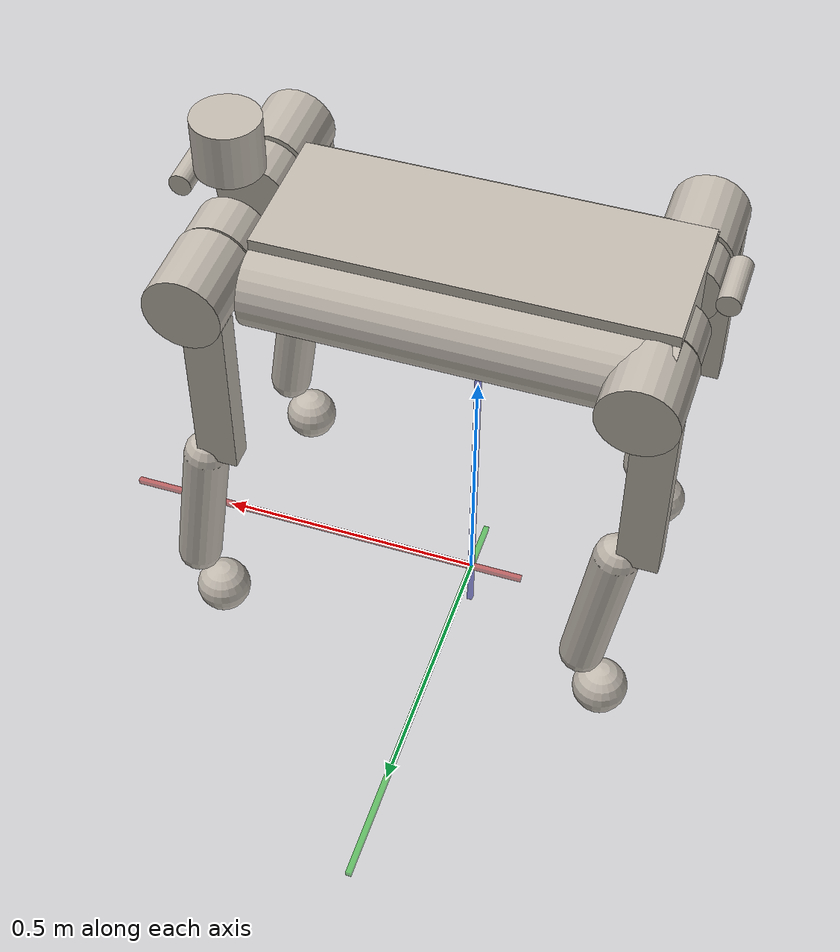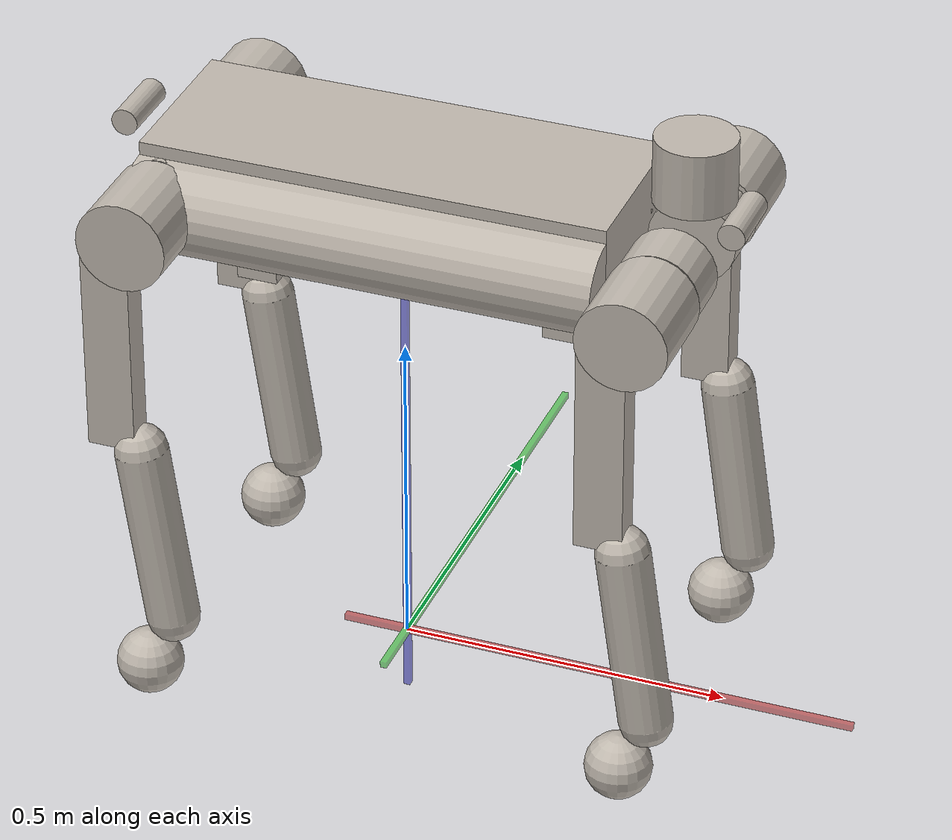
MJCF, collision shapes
<mujoco model="A01B_URDF">
  <compiler angle="radian" assetdir="meshes" discardvisual="false" autolimits="true" eulerseq="zyx"/>
  <option timestep="0.002"  tolerance="0.0000000001" impratio="200" noslip_iterations="100000"/>

  <visual >
    <rgba contactpoint="0.1 0.8 0.2 1" contactforce="0.7 0.5 0.4 1"/>
    <scale forcewidth="0.04" contactwidth="0.15" contactheight="0.01"/>
  </visual>

  <default>
    <default class="quadruped">
      <general dyntype="none" biastype="affine"/>
      <geom friction="0.8" margin="0.001" material="robot_color"/>
      <default class="collision">
        <geom group="4" contype="1" conaffinity="1" mass="0"/>
        <default class="collision_abad">
          <geom type="cylinder" size="0.065 0.04" mass="0"  quat="1 1 0 0"/>
        </default>
        <default class="collision_thigh_1">
          <geom type="cylinder" size="0.068 0.068" mass="0.0" quat="1 1 0 0"/>
        </default>
        <default class="collision_thigh_2">
          <geom type="box" size="0.036 0.022 0.16" mass="0.0"/>
        </default>
        <default class="collision_calf">
          <geom type="capsule" size="0.04" fromto="0 0 -0.0 0.04 0 -0.28" mass="0.0"/>
        </default>
        <default class="foot">
          <geom type="sphere" size="0.05" pos="0 0 -0.37" mass="0.05" priority="1" solimp="0.015 1 0.031"
              condim="3" friction="1.6 0.02 0.01"/>
        </default>
        <default class="foot_site">
          <site size="0.05" pos="0 0 -0.4" group="3"/>
        </default>
        <!-- 雷达 -->
        <default class="radar">
          <geom type="cylinder" size="0.06 0.05" pos="0 0 0.39" mass="2.3" priority="1" solimp="0.015 1 0.031"
              condim="3" friction="1.0 0.02 0.01"/>
        </default>
        <default class="face">
          <geom type="cylinder" size="0.02 0.05"  mass="0.0"/>
        </default>
      <!-- 机身底座支架碰撞点 -->
      <default class="base_bracket">
          <geom type="box" size="0.03 0.015 0.01"  mass="0.001" priority="1" solimp="0.015 1 0.031"
              condim="3" friction="1.0 0.02 0.01" group="5"/>
        </default>
      </default>
      <default class="visual">
        <geom type="mesh" contype="0" conaffinity="0" group="2"/>
      </default>`
      <default class="joint">
        <joint damping="1.6" frictionloss="1"/>
      </default>
    </default>
  </default>
  <asset>
    <texture type="2d" name="trunk" file="texture2.png"/>
    <material name="robot_color" texture="trunk" specular="1" shininess="0.25"/>

    <texture type="2d" name="Metal009_color"      file="../../../../textures/Metal009_2K-PNG/Metal009_2K-PNG_Color.png"/>
    <texture type="2d" name="Metal009_roughness"  file="../../../../textures/Metal009_2K-PNG/Metal009_2K-PNG_Roughness.png"/>
    <texture type="2d" name="Metal009_metalic"  file="../../../../textures/Metal009_2K-PNG/Metal009_2K-PNG_Metalness.png"/>
    <texture type="2d" name="Metal009_normal"     file="../../../../textures/Metal009_2K-PNG/Metal009_2K-PNG_NormalDX.png"/>

    <material name="pbr_metal_gray" metallic ="0.0" roughness="1.0" rgba="1 0 0 1.0">
      <layer role="rgb"        texture="Metal009_color"/>
      <layer role="normal"     texture="Metal009_normal"/>
      <layer role="roughness"  texture="Metal009_roughness"/>
      <layer role="metallic"   texture="Metal009_metalic"/>
    </material>

    <texture type="2d" name="Plastic006_color"      file="../../../../textures/Plastic006_2K-PNG/Plastic006_2K-PNG_Color.png"/>
    <texture type="2d" name="Plastic006_roughness"  file="../../../../textures/Plastic006_2K-PNG/Plastic006_2K-PNG_Roughness.png"/>
    <texture type="2d" name="Plastic006_normal"     file="../../../../textures/Plastic006_2K-PNG/Plastic006_2K-PNG_NormalDX.png"/>

    <material name="pbr_plastic_black" metallic ="0.05" roughness="1.0" rgba="1 0 0 1.0">
      <layer role="rgb"        texture="Plastic006_color"/>
      <layer role="normal"     texture="Plastic006_normal"/>
      <layer role="roughness"  texture="Plastic006_roughness"/>
    </material>

    <texture type="2d" name="Metal044A_color"      file="../../../../textures/Metal044A_2K-PNG/Metal044A_2K-PNG_Color.png"/>
    <texture type="2d" name="Metal044A_roughness"  file="../../../../textures/Metal044A_2K-PNG/Metal044A_2K-PNG_Roughness.png"/>
    <texture type="2d" name="Metal044A_metalic"  file="../../../../textures/Metal044A_2K-PNG/Metal044A_2K-PNG_Metalness.png"/>
    <texture type="2d" name="Metal044A_normal"     file="../../../../textures/Metal044A_2K-PNG/Metal044A_2K-PNG_NormalDX.png"/>

    <material name="pbr_metal_silver_smooth" metallic ="0.0" roughness="1.0" rgba="1 0 0 1.0">
      <layer role="rgb"        texture="Metal044A_color"/>
      <layer role="normal"     texture="Metal044A_normal"/>
      <layer role="roughness"  texture="Metal044A_roughness"/>
      <layer role="metallic"   texture="Metal044A_metalic"/>
    </material>

    <texture type="2d" name="Metal044B_color"      file="../../../../textures/Metal044B_2K-PNG/Metal044B_2K-PNG_Color.png"/>
    <texture type="2d" name="Metal044B_roughness"  file="../../../../textures/Metal044B_2K-PNG/Metal044B_2K-PNG_Roughness.png"/>
    <texture type="2d" name="Metal044B_metalic"  file="../../../../textures/Metal044B_2K-PNG/Metal044B_2K-PNG_Metalness.png"/>
    <texture type="2d" name="Metal044B_normal"     file="../../../../textures/Metal044B_2K-PNG/Metal044B_2K-PNG_NormalDX.png"/>

    <material name="pbr_metal_silver_rough" metallic ="0.0" roughness="1.0" rgba="1 0 0 1.0">
      <layer role="rgb"        texture="Metal044B_color"/>
      <layer role="normal"     texture="Metal044B_normal"/>
      <layer role="roughness"  texture="Metal044B_roughness"/>
      <layer role="metallic"   texture="Metal044B_metalic"/>
    </material>

    <mesh name="base_link" file="base_link.STL"/>
    <mesh name="fl_abad" file="fl_abad.STL"/>
    <mesh name="fl_thigh" file="fl_thigh.STL"/>
    <mesh name="fl_calf" file="fl_calf.STL"/>
    <mesh name="fr_abad" file="fr_abad.STL"/>
    <mesh name="fr_thigh" file="fr_thigh.STL"/>
    <mesh name="fr_calf" file="fr_calf.STL"/>
    <mesh name="hl_abad" file="hl_abad.STL"/>
    <mesh name="hl_thigh" file="hl_thigh.STL"/>
    <mesh name="hl_calf" file="hl_calf.STL"/>
    <mesh name="hr_abad" file="hr_abad.STL"/>
    <mesh name="hr_thigh" file="hr_thigh.STL"/>
    <mesh name="hr_calf" file="hr_calf.STL"/>
  </asset>

  <worldbody>

    <body name="command_indicator_mocap" pos="0 0 0" mocap="true">
      <geom conaffinity="0" contype="0" pos="0.3 0 0" rgba="0.7 0 0 0.5" size="0.4 0.005 0.005" type="box" group="1"></geom>
      <geom conaffinity="0" contype="0" pos="0 0.3 0" rgba="0 0.7 0 0.5" size="0.005 0.4 0.005" type="box" group="1"></geom>
      <geom conaffinity="0" contype="0" pos="0 0 0.3" rgba="0 0 0.7 0.5" size="0.005 0.005 0.4" type="box" group="1"></geom>
    </body>

    <body name="trunk_link" pos="0 0 0.8">
      <geom type="mesh" rgba="1 1 1 1" pos="0.0608046 -0.0181483 -0.0448853" mesh="base_link" class="visual" material="pbr_metal_silver_rough"/>
      <inertial mass="30.0746" pos="0.007942 0 0.007308" fullinertia="0.3194 1.180 1.35 0 0 0"/>

      <geom class="collision" type="box" pos="0 0 -0.04" size="0.35 0.13 0.08" contype="0" conaffinity="1"/>
      <geom class="collision" type="cylinder" size="0.07 0.35" pos="0 -0.13 -0.05" quat="1 0 1 0" contype="0" conaffinity="1"/>
      <geom class="collision" type="cylinder" size="0.07 0.35" pos="0 0.13 -0.05" quat="1 0 1 0" contype="0" conaffinity="1"/>
      <!-- 机身底座支架的碰撞点 -->
      <geom name="fr_base_bracket" class="base_bracket"  pos="0.285 -0.108 -0.145"   contype="1" conaffinity="1"/>
      <geom name="fl_base_bracket" class="base_bracket"  pos="0.285 0.072 -0.145"   contype="1" conaffinity="1"/>
      <geom name="hr_base_bracket" class="base_bracket"  pos="-0.177 -0.108 -0.145"   contype="1" conaffinity="1"/>
      <geom name="hl_base_bracket" class="base_bracket"  pos="-0.177 0.072 -0.145"   contype="1" conaffinity="1"/>
      <geom name="top_radar" class="radar"  pos="0.44 -0.02 0.1"   contype="1" conaffinity="1"/>
      <geom name="front_face" class="face"  pos="0.51 -0.02 0.03" quat="0 0 1 1"  contype="1" conaffinity="1"/>
      <geom name="back_face" class="face"  pos="-0.4 -0.02 0.03" quat="0 0 1 1"  contype="1" conaffinity="1"/>
      <site name="imu" size="0.01" pos="0 0 0"/>

      <freejoint name="trunk"/>
      <body name="fr_abad" pos="0.42386 -0.11844 -0.044478">
        <inertial pos="-0.014896 0.015941 0.000002330446" quat="0.456334 0.441042 0.546683 0.54624" mass="2.4" diaginertia="0.00830465 0.00689115 0.0036792"/>
        <joint name="fr_joint0" pos="0 0 0" axis="1 0 0" range="-0.7854 0.7854" class="joint"/>
        <geom type="mesh" rgba="1 1 1 1" mesh="fr_abad" class="visual" material="pbr_metal_silver_rough"/>
        <geom  class="collision_abad" pos="0 0.02 0" contype="0" conaffinity="0"/>
        <body name="fr_thigh" pos="0 -0.13425 0">
          <inertial pos="-0.00344 0.057962 -0.023227" quat="0.987524 -0.130746 0.029794 -0.0825434" mass="4.832" diaginertia="0.0345519 0.0324169 0.00515115"/>
          <joint name="fr_joint1" pos="0 0 0" axis="0 -1 0" range="-3.1765 0" class="joint"/>
          <geom type="mesh" rgba="1 1 1 1" mesh="fr_thigh" class="visual" material="pbr_metal_silver_rough"/>
          <geom class="collision_thigh_1" pos="0 0.04 0" contype="0" conaffinity="0"/>
          <geom class="collision_thigh_2" pos="-0.03 0.0 -0.18" contype="0" conaffinity="0"/>
          <body name="fr_calf" pos="0 0 -0.35">
            <inertial pos="0.0167506 0.000104828 -0.179424" quat="0.721314 -0.0175889 -0.0176363 0.69216" mass="0.61" diaginertia="0.0158521 0.0155591 0.000377821"/>
            <joint name="fr_joint2" pos="0 0 0" axis="0 -1 0" range="0.5208 2.5173" class="joint"/>
            <geom type="mesh" rgba="1 1 1 1" mesh="fr_calf" class="visual" material="pbr_plastic_black"/>
            <geom  class="collision_calf" contype="1" conaffinity="0"/>
            <body name="fr_foot">
              <geom  class="foot" contype="1" conaffinity="1" name="fr"/>
              <site name="fr_site" class="foot_site" />
            </body>
          </body>
        </body>
      </body>
      <body name="fl_abad" pos="0.42386 0.081557 -0.044479">
        <inertial pos="-0.014896 -0.015941 0.000233" quat="0.546522 0.546463 0.44111 0.456195" mass="2.4" diaginertia="0.00666332 0.00556161 0.00306241"/>
        <joint name="fl_joint0" pos="0 0 0" axis="1 0 0" range="-0.7854 0.7854" class="joint"/>
        <geom type="mesh" rgba="1 1 1 1" mesh="fl_abad" class="visual" material="pbr_metal_silver_rough"/>
        <geom  class="collision_abad" pos="0 -0.02 0" contype="0" conaffinity="0"/>
        <body name="fl_thigh" pos="0 0.1343 0">
          <inertial pos="-0.00344 -0.057962 -0.023227" quat="0.987524 0.130746 0.029794 0.0825434" mass="4.832" diaginertia="0.0345519 0.0324169 0.00515115"/>
          <joint name="fl_joint1" pos="0 0 0" axis="0 -1 0" range="-3.1765 0" class="joint"/>
          <geom type="mesh" rgba="1 1 1 1" mesh="fl_thigh" class="visual" material="pbr_metal_silver_rough"/>
          <geom class="collision_thigh_1" pos="0 -0.04 0" contype="0" conaffinity="0"/>
          <geom class="collision_thigh_2" pos="-0.03 0.0 -0.18" contype="0" conaffinity="0"/>
          <body name="fl_calf" pos="0 0 -0.35">
            <inertial pos="0.01656 -0.000105 -0.179108" quat="0.706202 -0.0170205 -0.0176403 0.707586" mass="0.61" diaginertia="0.0158062 0.0155149 0.000377068"/>
            <joint name="fl_joint2" pos="0 0 0" axis="0 -1 0" range="0.5208 2.5173" class="joint"/>
            <geom type="mesh" rgba="1 1 1 1" mesh="fl_calf" class="visual" material="pbr_plastic_black"/>
            <geom class="collision_calf" contype="1" conaffinity="0"/>
            <body name="fl_foot">
              <geom class="foot" contype="1" conaffinity="1" name="fl"/>
              <site name="fl_site" class="foot_site"/>
            </body>
          </body>
        </body>
      </body>
      <body name="hr_abad" pos="-0.31564 -0.11844 -0.044478">
        <inertial pos="0.014896 0.015941 0.000233" quat="0.546463 0.546522 0.456195 0.44111" mass="2.4" diaginertia="0.00666332 0.00556161 0.00306241"/>
        <joint name="hr_joint0" pos="0 0 0" axis="1 0 0" range="-0.7854 0.7854" class="joint"/>
        <geom type="mesh" rgba="1 1 1 1" mesh="hr_abad" class="visual" material="pbr_metal_silver_rough"/>
        <geom class="collision_abad" pos="0 0.02 0" contype="0" conaffinity="0"/>
        <body name="hr_thigh" pos="0 -0.1343 0">
          <inertial pos="0.00344 0.057962 -0.023227" quat="0.987524 -0.130746 -0.029794 0.0825434" mass="4.832" diaginertia="0.0345519 0.0324169 0.00515115"/>
          <joint name="hr_joint1" pos="0 0 0" axis="0 -1 0" range="-3.1765 0" class="joint"/>
          <geom type="mesh" rgba="1 1 1 1" mesh="hr_thigh" class="visual" material="pbr_metal_silver_rough"/>
          <geom class="collision_thigh_1" pos="0 0.04 0" contype="0" conaffinity="0"/>
          <geom class="collision_thigh_2" pos="-0.03 0.0 -0.18" contype="0" conaffinity="0"/>
          <body name="hr_calf" pos="0.0067191 0 -0.34994">
            <inertial pos="0.01656 0.000105 -0.179108" quat="0.707586 -0.0176403 -0.0170205 0.706202" mass="0.61" diaginertia="0.0158062 0.0155149 0.000377068"/>
            <joint name="hr_joint2" pos="0 0 0" axis="0 -1 0" range="0.5208 2.5173" class="joint"/>
            <geom type="mesh" rgba="1 1 1 1" mesh="hr_calf" class="visual" material="pbr_plastic_black"/>
            <geom class="collision_calf" contype="1" conaffinity="0"/>
            <body name="hr_foot">
              <geom class="foot" contype="1" conaffinity="1" name="hr"/>
              <site name="hr_site" class="foot_site"/>
            </body>
          </body>
        </body>
      </body>
      <body name="hl_abad" pos="-0.31564 0.081559 -0.044478">
        <inertial pos="0.014896 -0.015941 0.000233" quat="0.44111 0.456195 0.546522 0.546463" mass="2.4" diaginertia="0.00666332 0.00556161 0.00306241"/>
        <joint name="hl_joint0" pos="0 0 0" axis="1 0 0" range="-0.7854 0.7854" class="joint"/>
        <geom type="mesh" rgba="1 1 1 1" mesh="hl_abad" class="visual" material="pbr_metal_silver_rough"/>
        <geom class="collision_abad" pos="0 -0.02 0" contype="0" conaffinity="0"/>
        <body name="hl_thigh" pos="0 0.13425 0">
          <inertial pos="0.00344 -0.057962 -0.023227" quat="0.987524 0.130746 -0.029794 -0.0825434" mass="4.832" diaginertia="0.0345519 0.0324169 0.00515115"/>
          <joint name="hl_joint1" pos="0 0 0" axis="0 -1 0" range="-3.1765 0" class="joint"/>
          <geom type="mesh" rgba="1 1 1 1" mesh="hl_thigh" class="visual" material="pbr_metal_silver_rough"/>
          <geom class="collision_thigh_1" pos="0 -0.04 0" contype="0" conaffinity="0"/>
          <geom class="collision_thigh_2" pos="-0.03 0.0 -0.18" contype="0" conaffinity="0"/>
          <body name="hl_calf" pos="0.0067191 0 -0.34994">
            <inertial pos="0.01656 -0.000105 -0.179108" quat="0.709257 -0.0169468 -0.0177109 0.704523" mass="0.61" diaginertia="0.0158062 0.0155149 0.000377068"/>
            <joint name="hl_joint2" pos="0 0 0" axis="0 -1 0" range="0.5208 2.5173" class="joint"/>
            <geom type="mesh" rgba="1 1 1 1" mesh="hl_calf" class="visual" material="pbr_plastic_black"/>
            <geom class="collision_calf" contype="1" conaffinity="0"/>
            <body name="hl_foot">
              <geom class="foot" contype="1" conaffinity="1" name="hl"/>
              <site name="hl_site" class="foot_site"/>
            </body>
          </body>
        </body>
      </body>

    </body>
  </worldbody>

  <actuator>
      <!-- 前左腿 -->
      <position name="fl_abad_actuator" joint="fl_joint0" kp="200" kv="20"
                ctrllimited="true" ctrlrange="-0.7854 0.7854"
                forcelimited="true" forcerange="-200 200"/>
      <position name="fl_thigh_actuator" joint="fl_joint1" kp="400" kv="40"
                ctrllimited="true" ctrlrange="-3.1765 0"
                forcelimited="true" forcerange="-200 200"/>
      <position name="fl_calf_actuator" joint="fl_joint2" kp="300" kv="30"
                ctrllimited="true" ctrlrange="0.5208 2.5173"
                forcelimited="true" forcerange="-200 200"/>

      <!-- 前右腿 -->
      <position name="fr_abad_actuator" joint="fr_joint0" kp="200" kv="20"
                ctrllimited="true" ctrlrange="-0.7854 0.7854"
                forcelimited="true" forcerange="-200 200"/>
      <position name="fr_thigh_actuator" joint="fr_joint1" kp="400" kv="40"
                ctrllimited="true" ctrlrange="-3.1765 0"
                forcelimited="true" forcerange="-200 200"/>
      <position name="fr_calf_actuator" joint="fr_joint2" kp="300" kv="30"
                ctrllimited="true" ctrlrange="0.5208 2.5173"
                forcelimited="true" forcerange="-200 200"/>

      <!-- 后左腿 -->
      <position name="hl_abad_actuator" joint="hl_joint0" kp="200" kv="20"
                ctrllimited="true" ctrlrange="-0.7854 0.7854"
                forcelimited="true" forcerange="-200 200"/>
      <position name="hl_thigh_actuator" joint="hl_joint1" kp="400" kv="40"
                ctrllimited="true" ctrlrange="-3.1765 0"
                forcelimited="true" forcerange="-200 200"/>
      <position name="hl_calf_actuator" joint="hl_joint2" kp="300" kv="30"
                ctrllimited="true" ctrlrange="0.5208 2.5173"
                forcelimited="true" forcerange="-200 200"/>

      <!-- 后右腿 -->
      <position name="hr_abad_actuator" joint="hr_joint0" kp="200" kv="20"
                ctrllimited="true" ctrlrange="-0.7854 0.7854"
                forcelimited="true" forcerange="-200 200"/>
      <position name="hr_thigh_actuator" joint="hr_joint1" kp="400" kv="40"
                ctrllimited="true" ctrlrange="-3.1765 0"
                forcelimited="true" forcerange="-200 200"/>
      <position name="hr_calf_actuator" joint="hr_joint2" kp="300" kv="30"
                ctrllimited="true" ctrlrange="0.5208 2.5173"
                forcelimited="true" forcerange="-200 200"/>
  </actuator>

<sensor>
<framequat name="imu_quat" objtype="site" objname="imu"/>
<gyro name="imu_omega" site="imu" noise="5e-4" cutoff="34.9"/>
<accelerometer name="imu_acc" site="imu" noise="1e-2" cutoff="157"/>
<framepos name="fr_foot" objtype="site" objname="fr_site" reftype="site" refname="imu"/>
<framepos name="fl_foot" objtype="site" objname="fl_site" reftype="site" refname="imu"/>
<framepos name="hr_foot" objtype="site" objname="hr_site" reftype="site" refname="imu"/>
<framepos name="hl_foot" objtype="site" objname="hl_site" reftype="site" refname="imu"/>
<touch name="fr_touch" site="fr_site"/>
<touch name="fl_touch" site="fl_site"/>
<touch name="rr_touch" site="hr_site"/>
<touch name="rl_touch" site="hl_site"/>
</sensor>

</mujoco>
